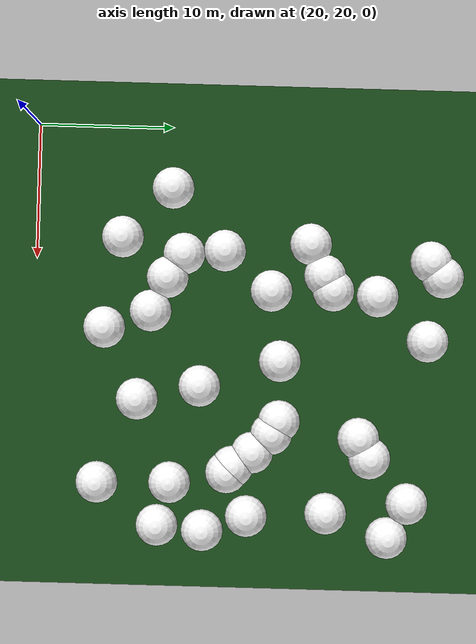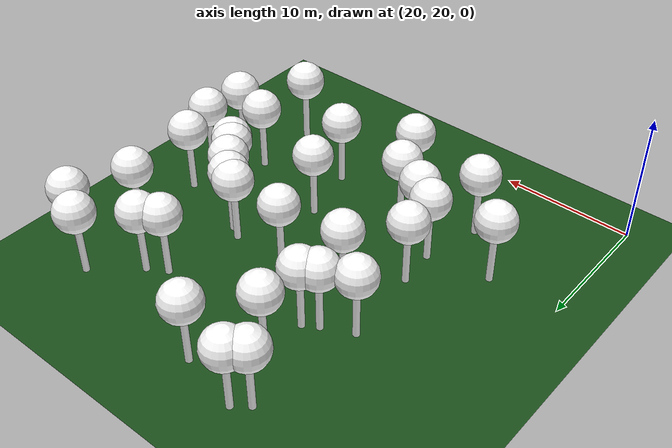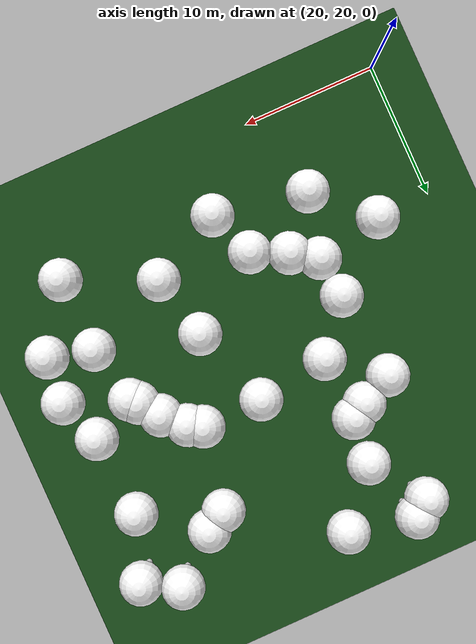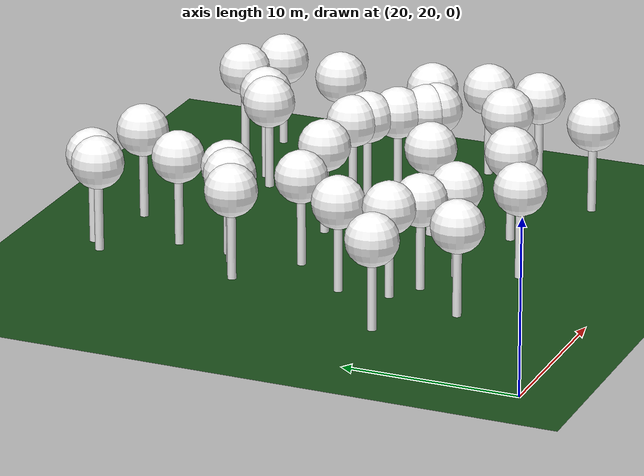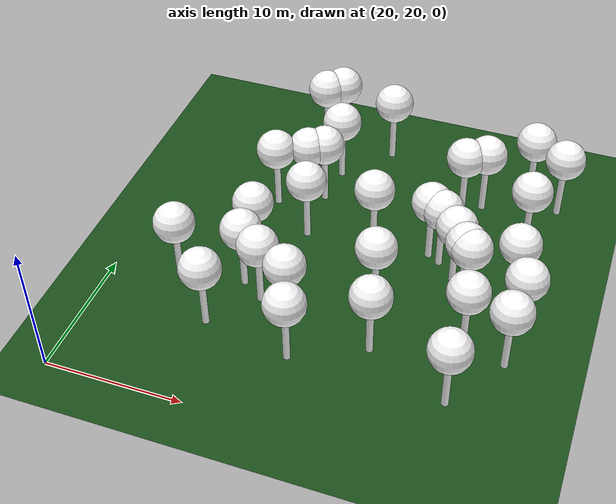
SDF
<sdf version="1.8">
 <world name="forest_world">
  <model name="tree_simple475">
   <static>1</static>
   <link name="link">
    <pose>0 0 0.1 0 -0 0</pose>
    <collision name="collision_trunk">
     <pose>0 0 2 0 -0 0</pose>
     <geometry><cylinder><radius>0.25</radius><length>4</length></cylinder></geometry>
    </collision>
    <collision name="collision_treetop">
     <pose>0 0 5.2 0 -0 0</pose>
     <geometry><sphere><radius>1.5</radius></sphere></geometry>
    </collision>
    <visual name="trunk">
     <pose>0 0 2 0 -0 0</pose>
     <geometry><cylinder><radius>0.25</radius><length>4</length></cylinder></geometry>
     <material>
      <ambient>0.5 0.5 0.5 1</ambient>
      <diffuse>1.0 1.0 1.0 1</diffuse>
      <specular>0.0 0.0 0.0 1</specular>
      <pbr>
       <metal>
        <albedo_map>../worlds/textures/tree_simple_trunk.jpg</albedo_map>
        <metalness>0.0</metalness>
        <roughness>0.8</roughness>
       </metal>
      </pbr>
     </material>
    </visual>
    <visual name="treetop">
     <pose>0 0 5.2 0 -0 0</pose>
     <geometry><sphere><radius>1.5</radius></sphere></geometry>
     <material>
      <ambient>0.5 0.5 0.5 1</ambient>
      <diffuse>1.0 1.0 1.0 1</diffuse>
      <specular>0.0 0.0 0.0 1</specular>
      <pbr>
       <metal>
        <albedo_map>../worlds/textures/tree_simple_treetop.jpg</albedo_map>
        <metalness>0.0</metalness>
        <roughness>0.9</roughness>
       </metal>
      </pbr>
     </material>
    </visual>
   </link>
   <pose>30.9431222124 49.7431013716 0 0 -0 0</pose>
  </model>
  <model name="tree_simple449">
   <static>1</static>
   <link name="link">
    <pose>0 0 0.1 0 -0 0</pose>
    <collision name="collision_trunk">
     <pose>0 0 2 0 -0 0</pose>
     <geometry><cylinder><radius>0.25</radius><length>4</length></cylinder></geometry>
    </collision>
    <collision name="collision_treetop">
     <pose>0 0 5.2 0 -0 0</pose>
     <geometry><sphere><radius>1.5</radius></sphere></geometry>
    </collision>
    <visual name="trunk">
     <pose>0 0 2 0 -0 0</pose>
     <geometry><cylinder><radius>0.25</radius><length>4</length></cylinder></geometry>
     <material>
      <ambient>0.5 0.5 0.5 1</ambient>
      <diffuse>1.0 1.0 1.0 1</diffuse>
      <specular>0.0 0.0 0.0 1</specular>
      <pbr>
       <metal>
        <albedo_map>../worlds/textures/tree_simple_trunk.jpg</albedo_map>
        <metalness>0.0</metalness>
        <roughness>0.8</roughness>
       </metal>
      </pbr>
     </material>
    </visual>
    <visual name="treetop">
     <pose>0 0 5.2 0 -0 0</pose>
     <geometry><sphere><radius>1.5</radius></sphere></geometry>
     <material>
      <ambient>0.5 0.5 0.5 1</ambient>
      <diffuse>1.0 1.0 1.0 1</diffuse>
      <specular>0.0 0.0 0.0 1</specular>
      <pbr>
       <metal>
        <albedo_map>../worlds/textures/tree_simple_treetop.jpg</albedo_map>
        <metalness>0.0</metalness>
        <roughness>0.9</roughness>
       </metal>
      </pbr>
     </material>
    </visual>
   </link>
   <pose>32.2301413543 37.584175072 0 0 -0 0</pose>
  </model>
  <model name="tree_simple426">
   <static>1</static>
   <link name="link">
    <pose>0 0 0.1 0 -0 0</pose>
    <collision name="collision_trunk">
     <pose>0 0 2 0 -0 0</pose>
     <geometry><cylinder><radius>0.25</radius><length>4</length></cylinder></geometry>
    </collision>
    <collision name="collision_treetop">
     <pose>0 0 5.2 0 -0 0</pose>
     <geometry><sphere><radius>1.5</radius></sphere></geometry>
    </collision>
    <visual name="trunk">
     <pose>0 0 2 0 -0 0</pose>
     <geometry><cylinder><radius>0.25</radius><length>4</length></cylinder></geometry>
     <material>
      <ambient>0.5 0.5 0.5 1</ambient>
      <diffuse>1.0 1.0 1.0 1</diffuse>
      <specular>0.0 0.0 0.0 1</specular>
      <pbr>
       <metal>
        <albedo_map>../worlds/textures/tree_simple_trunk.jpg</albedo_map>
        <metalness>0.0</metalness>
        <roughness>0.8</roughness>
       </metal>
      </pbr>
     </material>
    </visual>
    <visual name="treetop">
     <pose>0 0 5.2 0 -0 0</pose>
     <geometry><sphere><radius>1.5</radius></sphere></geometry>
     <material>
      <ambient>0.5 0.5 0.5 1</ambient>
      <diffuse>1.0 1.0 1.0 1</diffuse>
      <specular>0.0 0.0 0.0 1</specular>
      <pbr>
       <metal>
        <albedo_map>../worlds/textures/tree_simple_treetop.jpg</albedo_map>
        <metalness>0.0</metalness>
        <roughness>0.9</roughness>
       </metal>
      </pbr>
     </material>
    </visual>
   </link>
   <pose>48.2961501598 36.1951986296 0 0 -0 0</pose>
  </model>
  <model name="tree_simple414">
   <static>1</static>
   <link name="link">
    <pose>0 0 0.1 0 -0 0</pose>
    <collision name="collision_trunk">
     <pose>0 0 2 0 -0 0</pose>
     <geometry><cylinder><radius>0.25</radius><length>4</length></cylinder></geometry>
    </collision>
    <collision name="collision_treetop">
     <pose>0 0 5.2 0 -0 0</pose>
     <geometry><sphere><radius>1.5</radius></sphere></geometry>
    </collision>
    <visual name="trunk">
     <pose>0 0 2 0 -0 0</pose>
     <geometry><cylinder><radius>0.25</radius><length>4</length></cylinder></geometry>
     <material>
      <ambient>0.5 0.5 0.5 1</ambient>
      <diffuse>1.0 1.0 1.0 1</diffuse>
      <specular>0.0 0.0 0.0 1</specular>
      <pbr>
       <metal>
        <albedo_map>../worlds/textures/tree_simple_trunk.jpg</albedo_map>
        <metalness>0.0</metalness>
        <roughness>0.8</roughness>
       </metal>
      </pbr>
     </material>
    </visual>
    <visual name="treetop">
     <pose>0 0 5.2 0 -0 0</pose>
     <geometry><sphere><radius>1.5</radius></sphere></geometry>
     <material>
      <ambient>0.5 0.5 0.5 1</ambient>
      <diffuse>1.0 1.0 1.0 1</diffuse>
      <specular>0.0 0.0 0.0 1</specular>
      <pbr>
       <metal>
        <albedo_map>../worlds/textures/tree_simple_treetop.jpg</albedo_map>
        <metalness>0.0</metalness>
        <roughness>0.9</roughness>
       </metal>
      </pbr>
     </material>
    </visual>
   </link>
   <pose>44.7953546514 35.1223055557 0 0 -0 0</pose>
  </model>
  <model name="tree_simple402">
   <static>1</static>
   <link name="link">
    <pose>0 0 0.1 0 -0 0</pose>
    <collision name="collision_trunk">
     <pose>0 0 2 0 -0 0</pose>
     <geometry><cylinder><radius>0.25</radius><length>4</length></cylinder></geometry>
    </collision>
    <collision name="collision_treetop">
     <pose>0 0 5.2 0 -0 0</pose>
     <geometry><sphere><radius>1.5</radius></sphere></geometry>
    </collision>
    <visual name="trunk">
     <pose>0 0 2 0 -0 0</pose>
     <geometry><cylinder><radius>0.25</radius><length>4</length></cylinder></geometry>
     <material>
      <ambient>0.5 0.5 0.5 1</ambient>
      <diffuse>1.0 1.0 1.0 1</diffuse>
      <specular>0.0 0.0 0.0 1</specular>
      <pbr>
       <metal>
        <albedo_map>../worlds/textures/tree_simple_trunk.jpg</albedo_map>
        <metalness>0.0</metalness>
        <roughness>0.8</roughness>
       </metal>
      </pbr>
     </material>
    </visual>
    <visual name="treetop">
     <pose>0 0 5.2 0 -0 0</pose>
     <geometry><sphere><radius>1.5</radius></sphere></geometry>
     <material>
      <ambient>0.5 0.5 0.5 1</ambient>
      <diffuse>1.0 1.0 1.0 1</diffuse>
      <specular>0.0 0.0 0.0 1</specular>
      <pbr>
       <metal>
        <albedo_map>../worlds/textures/tree_simple_treetop.jpg</albedo_map>
        <metalness>0.0</metalness>
        <roughness>0.9</roughness>
       </metal>
      </pbr>
     </material>
    </visual>
   </link>
   <pose>46.1530364681 25.5114731744 0 0 -0 0</pose>
  </model>
  <model name="tree_simple388">
   <static>1</static>
   <link name="link">
    <pose>0 0 0.1 0 -0 0</pose>
    <collision name="collision_trunk">
     <pose>0 0 2 0 -0 0</pose>
     <geometry><cylinder><radius>0.25</radius><length>4</length></cylinder></geometry>
    </collision>
    <collision name="collision_treetop">
     <pose>0 0 5.2 0 -0 0</pose>
     <geometry><sphere><radius>1.5</radius></sphere></geometry>
    </collision>
    <visual name="trunk">
     <pose>0 0 2 0 -0 0</pose>
     <geometry><cylinder><radius>0.25</radius><length>4</length></cylinder></geometry>
     <material>
      <ambient>0.5 0.5 0.5 1</ambient>
      <diffuse>1.0 1.0 1.0 1</diffuse>
      <specular>0.0 0.0 0.0 1</specular>
      <pbr>
       <metal>
        <albedo_map>../worlds/textures/tree_simple_trunk.jpg</albedo_map>
        <metalness>0.0</metalness>
        <roughness>0.8</roughness>
       </metal>
      </pbr>
     </material>
    </visual>
    <visual name="treetop">
     <pose>0 0 5.2 0 -0 0</pose>
     <geometry><sphere><radius>1.5</radius></sphere></geometry>
     <material>
      <ambient>0.5 0.5 0.5 1</ambient>
      <diffuse>1.0 1.0 1.0 1</diffuse>
      <specular>0.0 0.0 0.0 1</specular>
      <pbr>
       <metal>
        <albedo_map>../worlds/textures/tree_simple_treetop.jpg</albedo_map>
        <metalness>0.0</metalness>
        <roughness>0.9</roughness>
       </metal>
      </pbr>
     </material>
    </visual>
   </link>
   <pose>42.4041487093 37.8396173547 0 0 -0 0</pose>
  </model>
  <model name="tree_simple384">
   <static>1</static>
   <link name="link">
    <pose>0 0 0.1 0 -0 0</pose>
    <collision name="collision_trunk">
     <pose>0 0 2 0 -0 0</pose>
     <geometry><cylinder><radius>0.25</radius><length>4</length></cylinder></geometry>
    </collision>
    <collision name="collision_treetop">
     <pose>0 0 5.2 0 -0 0</pose>
     <geometry><sphere><radius>1.5</radius></sphere></geometry>
    </collision>
    <visual name="trunk">
     <pose>0 0 2 0 -0 0</pose>
     <geometry><cylinder><radius>0.25</radius><length>4</length></cylinder></geometry>
     <material>
      <ambient>0.5 0.5 0.5 1</ambient>
      <diffuse>1.0 1.0 1.0 1</diffuse>
      <specular>0.0 0.0 0.0 1</specular>
      <pbr>
       <metal>
        <albedo_map>../worlds/textures/tree_simple_trunk.jpg</albedo_map>
        <metalness>0.0</metalness>
        <roughness>0.8</roughness>
       </metal>
      </pbr>
     </material>
    </visual>
    <visual name="treetop">
     <pose>0 0 5.2 0 -0 0</pose>
     <geometry><sphere><radius>1.5</radius></sphere></geometry>
     <material>
      <ambient>0.5 0.5 0.5 1</ambient>
      <diffuse>1.0 1.0 1.0 1</diffuse>
      <specular>0.0 0.0 0.0 1</specular>
      <pbr>
       <metal>
        <albedo_map>../worlds/textures/tree_simple_treetop.jpg</albedo_map>
        <metalness>0.0</metalness>
        <roughness>0.9</roughness>
       </metal>
      </pbr>
     </material>
    </visual>
   </link>
   <pose>47.965270182 41.8315973536 0 0 -0 0</pose>
  </model>
  <model name="tree_simple366">
   <static>1</static>
   <link name="link">
    <pose>0 0 0.1 0 -0 0</pose>
    <collision name="collision_trunk">
     <pose>0 0 2 0 -0 0</pose>
     <geometry><cylinder><radius>0.25</radius><length>4</length></cylinder></geometry>
    </collision>
    <collision name="collision_treetop">
     <pose>0 0 5.2 0 -0 0</pose>
     <geometry><sphere><radius>1.5</radius></sphere></geometry>
    </collision>
    <visual name="trunk">
     <pose>0 0 2 0 -0 0</pose>
     <geometry><cylinder><radius>0.25</radius><length>4</length></cylinder></geometry>
     <material>
      <ambient>0.5 0.5 0.5 1</ambient>
      <diffuse>1.0 1.0 1.0 1</diffuse>
      <specular>0.0 0.0 0.0 1</specular>
      <pbr>
       <metal>
        <albedo_map>../worlds/textures/tree_simple_trunk.jpg</albedo_map>
        <metalness>0.0</metalness>
        <roughness>0.8</roughness>
       </metal>
      </pbr>
     </material>
    </visual>
    <visual name="treetop">
     <pose>0 0 5.2 0 -0 0</pose>
     <geometry><sphere><radius>1.5</radius></sphere></geometry>
     <material>
      <ambient>0.5 0.5 0.5 1</ambient>
      <diffuse>1.0 1.0 1.0 1</diffuse>
      <specular>0.0 0.0 0.0 1</specular>
      <pbr>
       <metal>
        <albedo_map>../worlds/textures/tree_simple_treetop.jpg</albedo_map>
        <metalness>0.0</metalness>
        <roughness>0.9</roughness>
       </metal>
      </pbr>
     </material>
    </visual>
   </link>
   <pose>37.2116014065 38.3075288524 0 0 -0 0</pose>
  </model>
  <model name="tree_simple345">
   <static>1</static>
   <link name="link">
    <pose>0 0 0.1 0 -0 0</pose>
    <collision name="collision_trunk">
     <pose>0 0 2 0 -0 0</pose>
     <geometry><cylinder><radius>0.25</radius><length>4</length></cylinder></geometry>
    </collision>
    <collision name="collision_treetop">
     <pose>0 0 5.2 0 -0 0</pose>
     <geometry><sphere><radius>1.5</radius></sphere></geometry>
    </collision>
    <visual name="trunk">
     <pose>0 0 2 0 -0 0</pose>
     <geometry><cylinder><radius>0.25</radius><length>4</length></cylinder></geometry>
     <material>
      <ambient>0.5 0.5 0.5 1</ambient>
      <diffuse>1.0 1.0 1.0 1</diffuse>
      <specular>0.0 0.0 0.0 1</specular>
      <pbr>
       <metal>
        <albedo_map>../worlds/textures/tree_simple_trunk.jpg</albedo_map>
        <metalness>0.0</metalness>
        <roughness>0.8</roughness>
       </metal>
      </pbr>
     </material>
    </visual>
    <visual name="treetop">
     <pose>0 0 5.2 0 -0 0</pose>
     <geometry><sphere><radius>1.5</radius></sphere></geometry>
     <material>
      <ambient>0.5 0.5 0.5 1</ambient>
      <diffuse>1.0 1.0 1.0 1</diffuse>
      <specular>0.0 0.0 0.0 1</specular>
      <pbr>
       <metal>
        <albedo_map>../worlds/textures/tree_simple_treetop.jpg</albedo_map>
        <metalness>0.0</metalness>
        <roughness>0.9</roughness>
       </metal>
      </pbr>
     </material>
    </visual>
   </link>
   <pose>28.6628994432 26.9095330542 0 0 -0 0</pose>
  </model>
  <model name="tree_simple337">
   <static>1</static>
   <link name="link">
    <pose>0 0 0.1 0 -0 0</pose>
    <collision name="collision_trunk">
     <pose>0 0 2 0 -0 0</pose>
     <geometry><cylinder><radius>0.25</radius><length>4</length></cylinder></geometry>
    </collision>
    <collision name="collision_treetop">
     <pose>0 0 5.2 0 -0 0</pose>
     <geometry><sphere><radius>1.5</radius></sphere></geometry>
    </collision>
    <visual name="trunk">
     <pose>0 0 2 0 -0 0</pose>
     <geometry><cylinder><radius>0.25</radius><length>4</length></cylinder></geometry>
     <material>
      <ambient>0.5 0.5 0.5 1</ambient>
      <diffuse>1.0 1.0 1.0 1</diffuse>
      <specular>0.0 0.0 0.0 1</specular>
      <pbr>
       <metal>
        <albedo_map>../worlds/textures/tree_simple_trunk.jpg</albedo_map>
        <metalness>0.0</metalness>
        <roughness>0.8</roughness>
       </metal>
      </pbr>
     </material>
    </visual>
    <visual name="treetop">
     <pose>0 0 5.2 0 -0 0</pose>
     <geometry><sphere><radius>1.5</radius></sphere></geometry>
     <material>
      <ambient>0.5 0.5 0.5 1</ambient>
      <diffuse>1.0 1.0 1.0 1</diffuse>
      <specular>0.0 0.0 0.0 1</specular>
      <pbr>
       <metal>
        <albedo_map>../worlds/textures/tree_simple_treetop.jpg</albedo_map>
        <metalness>0.0</metalness>
        <roughness>0.9</roughness>
       </metal>
      </pbr>
     </material>
    </visual>
   </link>
   <pose>43.9549385006 44.8684303608 0 0 -0 0</pose>
  </model>
  <model name="tree_simple332">
   <static>1</static>
   <link name="link">
    <pose>0 0 0.1 0 -0 0</pose>
    <collision name="collision_trunk">
     <pose>0 0 2 0 -0 0</pose>
     <geometry><cylinder><radius>0.25</radius><length>4</length></cylinder></geometry>
    </collision>
    <collision name="collision_treetop">
     <pose>0 0 5.2 0 -0 0</pose>
     <geometry><sphere><radius>1.5</radius></sphere></geometry>
    </collision>
    <visual name="trunk">
     <pose>0 0 2 0 -0 0</pose>
     <geometry><cylinder><radius>0.25</radius><length>4</length></cylinder></geometry>
     <material>
      <ambient>0.5 0.5 0.5 1</ambient>
      <diffuse>1.0 1.0 1.0 1</diffuse>
      <specular>0.0 0.0 0.0 1</specular>
      <pbr>
       <metal>
        <albedo_map>../worlds/textures/tree_simple_trunk.jpg</albedo_map>
        <metalness>0.0</metalness>
        <roughness>0.8</roughness>
       </metal>
      </pbr>
     </material>
    </visual>
    <visual name="treetop">
     <pose>0 0 5.2 0 -0 0</pose>
     <geometry><sphere><radius>1.5</radius></sphere></geometry>
     <material>
      <ambient>0.5 0.5 0.5 1</ambient>
      <diffuse>1.0 1.0 1.0 1</diffuse>
      <specular>0.0 0.0 0.0 1</specular>
      <pbr>
       <metal>
        <albedo_map>../worlds/textures/tree_simple_treetop.jpg</albedo_map>
        <metalness>0.0</metalness>
        <roughness>0.9</roughness>
       </metal>
      </pbr>
     </material>
    </visual>
   </link>
   <pose>39.1289157524 32.636662066 0 0 -0 0</pose>
  </model>
  <model name="tree_simple313">
   <static>1</static>
   <link name="link">
    <pose>0 0 0.1 0 -0 0</pose>
    <collision name="collision_trunk">
     <pose>0 0 2 0 -0 0</pose>
     <geometry><cylinder><radius>0.25</radius><length>4</length></cylinder></geometry>
    </collision>
    <collision name="collision_treetop">
     <pose>0 0 5.2 0 -0 0</pose>
     <geometry><sphere><radius>1.5</radius></sphere></geometry>
    </collision>
    <visual name="trunk">
     <pose>0 0 2 0 -0 0</pose>
     <geometry><cylinder><radius>0.25</radius><length>4</length></cylinder></geometry>
     <material>
      <ambient>0.5 0.5 0.5 1</ambient>
      <diffuse>1.0 1.0 1.0 1</diffuse>
      <specular>0.0 0.0 0.0 1</specular>
      <pbr>
       <metal>
        <albedo_map>../worlds/textures/tree_simple_trunk.jpg</albedo_map>
        <metalness>0.0</metalness>
        <roughness>0.8</roughness>
       </metal>
      </pbr>
     </material>
    </visual>
    <visual name="treetop">
     <pose>0 0 5.2 0 -0 0</pose>
     <geometry><sphere><radius>1.5</radius></sphere></geometry>
     <material>
      <ambient>0.5 0.5 0.5 1</ambient>
      <diffuse>1.0 1.0 1.0 1</diffuse>
      <specular>0.0 0.0 0.0 1</specular>
      <pbr>
       <metal>
        <albedo_map>../worlds/textures/tree_simple_treetop.jpg</albedo_map>
        <metalness>0.0</metalness>
        <roughness>0.9</roughness>
       </metal>
      </pbr>
     </material>
    </visual>
   </link>
   <pose>25.1046881591 30.4098930382 0 0 -0 0</pose>
  </model>
  <model name="tree_simple306">
   <static>1</static>
   <link name="link">
    <pose>0 0 0.1 0 -0 0</pose>
    <collision name="collision_trunk">
     <pose>0 0 2 0 -0 0</pose>
     <geometry><cylinder><radius>0.25</radius><length>4</length></cylinder></geometry>
    </collision>
    <collision name="collision_treetop">
     <pose>0 0 5.2 0 -0 0</pose>
     <geometry><sphere><radius>1.5</radius></sphere></geometry>
    </collision>
    <visual name="trunk">
     <pose>0 0 2 0 -0 0</pose>
     <geometry><cylinder><radius>0.25</radius><length>4</length></cylinder></geometry>
     <material>
      <ambient>0.5 0.5 0.5 1</ambient>
      <diffuse>1.0 1.0 1.0 1</diffuse>
      <specular>0.0 0.0 0.0 1</specular>
      <pbr>
       <metal>
        <albedo_map>../worlds/textures/tree_simple_trunk.jpg</albedo_map>
        <metalness>0.0</metalness>
        <roughness>0.8</roughness>
       </metal>
      </pbr>
     </material>
    </visual>
    <visual name="treetop">
     <pose>0 0 5.2 0 -0 0</pose>
     <geometry><sphere><radius>1.5</radius></sphere></geometry>
     <material>
      <ambient>0.5 0.5 0.5 1</ambient>
      <diffuse>1.0 1.0 1.0 1</diffuse>
      <specular>0.0 0.0 0.0 1</specular>
      <pbr>
       <metal>
        <albedo_map>../worlds/textures/tree_simple_treetop.jpg</albedo_map>
        <metalness>0.0</metalness>
        <roughness>0.9</roughness>
       </metal>
      </pbr>
     </material>
    </visual>
   </link>
   <pose>41.4749799485 38.3641433375 0 0 -0 0</pose>
  </model>
  <model name="tree_simple294">
   <static>1</static>
   <link name="link">
    <pose>0 0 0.1 0 -0 0</pose>
    <collision name="collision_trunk">
     <pose>0 0 2 0 -0 0</pose>
     <geometry><cylinder><radius>0.25</radius><length>4</length></cylinder></geometry>
    </collision>
    <collision name="collision_treetop">
     <pose>0 0 5.2 0 -0 0</pose>
     <geometry><sphere><radius>1.5</radius></sphere></geometry>
    </collision>
    <visual name="trunk">
     <pose>0 0 2 0 -0 0</pose>
     <geometry><cylinder><radius>0.25</radius><length>4</length></cylinder></geometry>
     <material>
      <ambient>0.5 0.5 0.5 1</ambient>
      <diffuse>1.0 1.0 1.0 1</diffuse>
      <specular>0.0 0.0 0.0 1</specular>
      <pbr>
       <metal>
        <albedo_map>../worlds/textures/tree_simple_trunk.jpg</albedo_map>
        <metalness>0.0</metalness>
        <roughness>0.8</roughness>
       </metal>
      </pbr>
     </material>
    </visual>
    <visual name="treetop">
     <pose>0 0 5.2 0 -0 0</pose>
     <geometry><sphere><radius>1.5</radius></sphere></geometry>
     <material>
      <ambient>0.5 0.5 0.5 1</ambient>
      <diffuse>1.0 1.0 1.0 1</diffuse>
      <specular>0.0 0.0 0.0 1</specular>
      <pbr>
       <metal>
        <albedo_map>../worlds/textures/tree_simple_treetop.jpg</albedo_map>
        <metalness>0.0</metalness>
        <roughness>0.9</roughness>
       </metal>
      </pbr>
     </material>
    </visual>
   </link>
   <pose>29.4568486027 34.1994676111 0 0 -0 0</pose>
  </model>
  <model name="tree_simple265">
   <static>1</static>
   <link name="link">
    <pose>0 0 0.1 0 -0 0</pose>
    <collision name="collision_trunk">
     <pose>0 0 2 0 -0 0</pose>
     <geometry><cylinder><radius>0.25</radius><length>4</length></cylinder></geometry>
    </collision>
    <collision name="collision_treetop">
     <pose>0 0 5.2 0 -0 0</pose>
     <geometry><sphere><radius>1.5</radius></sphere></geometry>
    </collision>
    <visual name="trunk">
     <pose>0 0 2 0 -0 0</pose>
     <geometry><cylinder><radius>0.25</radius><length>4</length></cylinder></geometry>
     <material>
      <ambient>0.5 0.5 0.5 1</ambient>
      <diffuse>1.0 1.0 1.0 1</diffuse>
      <specular>0.0 0.0 0.0 1</specular>
      <pbr>
       <metal>
        <albedo_map>../worlds/textures/tree_simple_trunk.jpg</albedo_map>
        <metalness>0.0</metalness>
        <roughness>0.8</roughness>
       </metal>
      </pbr>
     </material>
    </visual>
    <visual name="treetop">
     <pose>0 0 5.2 0 -0 0</pose>
     <geometry><sphere><radius>1.5</radius></sphere></geometry>
     <material>
      <ambient>0.5 0.5 0.5 1</ambient>
      <diffuse>1.0 1.0 1.0 1</diffuse>
      <specular>0.0 0.0 0.0 1</specular>
      <pbr>
       <metal>
        <albedo_map>../worlds/textures/tree_simple_treetop.jpg</albedo_map>
        <metalness>0.0</metalness>
        <roughness>0.9</roughness>
       </metal>
      </pbr>
     </material>
    </visual>
   </link>
   <pose>49.0905511153 29.866561196 0 0 -0 0</pose>
  </model>
  <model name="tree_simple230">
   <static>1</static>
   <link name="link">
    <pose>0 0 0.1 0 -0 0</pose>
    <collision name="collision_trunk">
     <pose>0 0 2 0 -0 0</pose>
     <geometry><cylinder><radius>0.25</radius><length>4</length></cylinder></geometry>
    </collision>
    <collision name="collision_treetop">
     <pose>0 0 5.2 0 -0 0</pose>
     <geometry><sphere><radius>1.5</radius></sphere></geometry>
    </collision>
    <visual name="trunk">
     <pose>0 0 2 0 -0 0</pose>
     <geometry><cylinder><radius>0.25</radius><length>4</length></cylinder></geometry>
     <material>
      <ambient>0.5 0.5 0.5 1</ambient>
      <diffuse>1.0 1.0 1.0 1</diffuse>
      <specular>0.0 0.0 0.0 1</specular>
      <pbr>
       <metal>
        <albedo_map>../worlds/textures/tree_simple_trunk.jpg</albedo_map>
        <metalness>0.0</metalness>
        <roughness>0.8</roughness>
       </metal>
      </pbr>
     </material>
    </visual>
    <visual name="treetop">
     <pose>0 0 5.2 0 -0 0</pose>
     <geometry><sphere><radius>1.5</radius></sphere></geometry>
     <material>
      <ambient>0.5 0.5 0.5 1</ambient>
      <diffuse>1.0 1.0 1.0 1</diffuse>
      <specular>0.0 0.0 0.0 1</specular>
      <pbr>
       <metal>
        <albedo_map>../worlds/textures/tree_simple_treetop.jpg</albedo_map>
        <metalness>0.0</metalness>
        <roughness>0.9</roughness>
       </metal>
      </pbr>
     </material>
    </visual>
   </link>
   <pose>49.3839982887 33.0886722223 0 0 -0 0</pose>
  </model>
  <model name="tree_simple197">
   <static>1</static>
   <link name="link">
    <pose>0 0 0.1 0 -0 0</pose>
    <collision name="collision_trunk">
     <pose>0 0 2 0 -0 0</pose>
     <geometry><cylinder><radius>0.25</radius><length>4</length></cylinder></geometry>
    </collision>
    <collision name="collision_treetop">
     <pose>0 0 5.2 0 -0 0</pose>
     <geometry><sphere><radius>1.5</radius></sphere></geometry>
    </collision>
    <visual name="trunk">
     <pose>0 0 2 0 -0 0</pose>
     <geometry><cylinder><radius>0.25</radius><length>4</length></cylinder></geometry>
     <material>
      <ambient>0.5 0.5 0.5 1</ambient>
      <diffuse>1.0 1.0 1.0 1</diffuse>
      <specular>0.0 0.0 0.0 1</specular>
      <pbr>
       <metal>
        <albedo_map>../worlds/textures/tree_simple_trunk.jpg</albedo_map>
        <metalness>0.0</metalness>
        <roughness>0.8</roughness>
       </metal>
      </pbr>
     </material>
    </visual>
    <visual name="treetop">
     <pose>0 0 5.2 0 -0 0</pose>
     <geometry><sphere><radius>1.5</radius></sphere></geometry>
     <material>
      <ambient>0.5 0.5 0.5 1</ambient>
      <diffuse>1.0 1.0 1.0 1</diffuse>
      <specular>0.0 0.0 0.0 1</specular>
      <pbr>
       <metal>
        <albedo_map>../worlds/textures/tree_simple_treetop.jpg</albedo_map>
        <metalness>0.0</metalness>
        <roughness>0.9</roughness>
       </metal>
      </pbr>
     </material>
    </visual>
   </link>
   <pose>45.2259514073 34.7129577048 0 0 -0 0</pose>
  </model>
  <model name="tree_simple190">
   <static>1</static>
   <link name="link">
    <pose>0 0 0.1 0 -0 0</pose>
    <collision name="collision_trunk">
     <pose>0 0 2 0 -0 0</pose>
     <geometry><cylinder><radius>0.25</radius><length>4</length></cylinder></geometry>
    </collision>
    <collision name="collision_treetop">
     <pose>0 0 5.2 0 -0 0</pose>
     <geometry><sphere><radius>1.5</radius></sphere></geometry>
    </collision>
    <visual name="trunk">
     <pose>0 0 2 0 -0 0</pose>
     <geometry><cylinder><radius>0.25</radius><length>4</length></cylinder></geometry>
     <material>
      <ambient>0.5 0.5 0.5 1</ambient>
      <diffuse>1.0 1.0 1.0 1</diffuse>
      <specular>0.0 0.0 0.0 1</specular>
      <pbr>
       <metal>
        <albedo_map>../worlds/textures/tree_simple_trunk.jpg</albedo_map>
        <metalness>0.0</metalness>
        <roughness>0.8</roughness>
       </metal>
      </pbr>
     </material>
    </visual>
    <visual name="treetop">
     <pose>0 0 5.2 0 -0 0</pose>
     <geometry><sphere><radius>1.5</radius></sphere></geometry>
     <material>
      <ambient>0.5 0.5 0.5 1</ambient>
      <diffuse>1.0 1.0 1.0 1</diffuse>
      <specular>0.0 0.0 0.0 1</specular>
      <pbr>
       <metal>
        <albedo_map>../worlds/textures/tree_simple_treetop.jpg</albedo_map>
        <metalness>0.0</metalness>
        <roughness>0.9</roughness>
       </metal>
      </pbr>
     </material>
    </visual>
   </link>
   <pose>33.8682165362 29.0192768916 0 0 -0 0</pose>
  </model>
  <model name="tree_simple180">
   <static>1</static>
   <link name="link">
    <pose>0 0 0.1 0 -0 0</pose>
    <collision name="collision_trunk">
     <pose>0 0 2 0 -0 0</pose>
     <geometry><cylinder><radius>0.25</radius><length>4</length></cylinder></geometry>
    </collision>
    <collision name="collision_treetop">
     <pose>0 0 5.2 0 -0 0</pose>
     <geometry><sphere><radius>1.5</radius></sphere></geometry>
    </collision>
    <visual name="trunk">
     <pose>0 0 2 0 -0 0</pose>
     <geometry><cylinder><radius>0.25</radius><length>4</length></cylinder></geometry>
     <material>
      <ambient>0.5 0.5 0.5 1</ambient>
      <diffuse>1.0 1.0 1.0 1</diffuse>
      <specular>0.0 0.0 0.0 1</specular>
      <pbr>
       <metal>
        <albedo_map>../worlds/textures/tree_simple_trunk.jpg</albedo_map>
        <metalness>0.0</metalness>
        <roughness>0.8</roughness>
       </metal>
      </pbr>
     </material>
    </visual>
    <visual name="treetop">
     <pose>0 0 5.2 0 -0 0</pose>
     <geometry><sphere><radius>1.5</radius></sphere></geometry>
     <material>
      <ambient>0.5 0.5 0.5 1</ambient>
      <diffuse>1.0 1.0 1.0 1</diffuse>
      <specular>0.0 0.0 0.0 1</specular>
      <pbr>
       <metal>
        <albedo_map>../worlds/textures/tree_simple_treetop.jpg</albedo_map>
        <metalness>0.0</metalness>
        <roughness>0.9</roughness>
       </metal>
      </pbr>
     </material>
    </visual>
   </link>
   <pose>31.0354412198 41.3621247095 0 0 -0 0</pose>
  </model>
  <model name="tree_simple164">
   <static>1</static>
   <link name="link">
    <pose>0 0 0.1 0 -0 0</pose>
    <collision name="collision_trunk">
     <pose>0 0 2 0 -0 0</pose>
     <geometry><cylinder><radius>0.25</radius><length>4</length></cylinder></geometry>
    </collision>
    <collision name="collision_treetop">
     <pose>0 0 5.2 0 -0 0</pose>
     <geometry><sphere><radius>1.5</radius></sphere></geometry>
    </collision>
    <visual name="trunk">
     <pose>0 0 2 0 -0 0</pose>
     <geometry><cylinder><radius>0.25</radius><length>4</length></cylinder></geometry>
     <material>
      <ambient>0.5 0.5 0.5 1</ambient>
      <diffuse>1.0 1.0 1.0 1</diffuse>
      <specular>0.0 0.0 0.0 1</specular>
      <pbr>
       <metal>
        <albedo_map>../worlds/textures/tree_simple_trunk.jpg</albedo_map>
        <metalness>0.0</metalness>
        <roughness>0.8</roughness>
       </metal>
      </pbr>
     </material>
    </visual>
    <visual name="treetop">
     <pose>0 0 5.2 0 -0 0</pose>
     <geometry><sphere><radius>1.5</radius></sphere></geometry>
     <material>
      <ambient>0.5 0.5 0.5 1</ambient>
      <diffuse>1.0 1.0 1.0 1</diffuse>
      <specular>0.0 0.0 0.0 1</specular>
      <pbr>
       <metal>
        <albedo_map>../worlds/textures/tree_simple_treetop.jpg</albedo_map>
        <metalness>0.0</metalness>
        <roughness>0.9</roughness>
       </metal>
      </pbr>
     </material>
    </visual>
   </link>
   <pose>32.4161735763 45.136147052 0 0 -0 0</pose>
  </model>
  <model name="tree_simple159">
   <static>1</static>
   <link name="link">
    <pose>0 0 0.1 0 -0 0</pose>
    <collision name="collision_trunk">
     <pose>0 0 2 0 -0 0</pose>
     <geometry><cylinder><radius>0.25</radius><length>4</length></cylinder></geometry>
    </collision>
    <collision name="collision_treetop">
     <pose>0 0 5.2 0 -0 0</pose>
     <geometry><sphere><radius>1.5</radius></sphere></geometry>
    </collision>
    <visual name="trunk">
     <pose>0 0 2 0 -0 0</pose>
     <geometry><cylinder><radius>0.25</radius><length>4</length></cylinder></geometry>
     <material>
      <ambient>0.5 0.5 0.5 1</ambient>
      <diffuse>1.0 1.0 1.0 1</diffuse>
      <specular>0.0 0.0 0.0 1</specular>
      <pbr>
       <metal>
        <albedo_map>../worlds/textures/tree_simple_trunk.jpg</albedo_map>
        <metalness>0.0</metalness>
        <roughness>0.8</roughness>
       </metal>
      </pbr>
     </material>
    </visual>
    <visual name="treetop">
     <pose>0 0 5.2 0 -0 0</pose>
     <geometry><sphere><radius>1.5</radius></sphere></geometry>
     <material>
      <ambient>0.5 0.5 0.5 1</ambient>
      <diffuse>1.0 1.0 1.0 1</diffuse>
      <specular>0.0 0.0 0.0 1</specular>
      <pbr>
       <metal>
        <albedo_map>../worlds/textures/tree_simple_treetop.jpg</albedo_map>
        <metalness>0.0</metalness>
        <roughness>0.9</roughness>
       </metal>
      </pbr>
     </material>
    </visual>
   </link>
   <pose>28.8379877366 40.3060921844 0 0 -0 0</pose>
  </model>
  <model name="tree_simple150">
   <static>1</static>
   <link name="link">
    <pose>0 0 0.1 0 -0 0</pose>
    <collision name="collision_trunk">
     <pose>0 0 2 0 -0 0</pose>
     <geometry><cylinder><radius>0.25</radius><length>4</length></cylinder></geometry>
    </collision>
    <collision name="collision_treetop">
     <pose>0 0 5.2 0 -0 0</pose>
     <geometry><sphere><radius>1.5</radius></sphere></geometry>
    </collision>
    <visual name="trunk">
     <pose>0 0 2 0 -0 0</pose>
     <geometry><cylinder><radius>0.25</radius><length>4</length></cylinder></geometry>
     <material>
      <ambient>0.5 0.5 0.5 1</ambient>
      <diffuse>1.0 1.0 1.0 1</diffuse>
      <specular>0.0 0.0 0.0 1</specular>
      <pbr>
       <metal>
        <albedo_map>../worlds/textures/tree_simple_trunk.jpg</albedo_map>
        <metalness>0.0</metalness>
        <roughness>0.8</roughness>
       </metal>
      </pbr>
     </material>
    </visual>
    <visual name="treetop">
     <pose>0 0 5.2 0 -0 0</pose>
     <geometry><sphere><radius>1.5</radius></sphere></geometry>
     <material>
      <ambient>0.5 0.5 0.5 1</ambient>
      <diffuse>1.0 1.0 1.0 1</diffuse>
      <specular>0.0 0.0 0.0 1</specular>
      <pbr>
       <metal>
        <albedo_map>../worlds/textures/tree_simple_treetop.jpg</albedo_map>
        <metalness>0.0</metalness>
        <roughness>0.9</roughness>
       </metal>
      </pbr>
     </material>
    </visual>
   </link>
   <pose>40.1655547132 28.2074332225 0 0 -0 0</pose>
  </model>
  <model name="tree_simple144">
   <static>1</static>
   <link name="link">
    <pose>0 0 0.1 0 -0 0</pose>
    <collision name="collision_trunk">
     <pose>0 0 2 0 -0 0</pose>
     <geometry><cylinder><radius>0.25</radius><length>4</length></cylinder></geometry>
    </collision>
    <collision name="collision_treetop">
     <pose>0 0 5.2 0 -0 0</pose>
     <geometry><sphere><radius>1.5</radius></sphere></geometry>
    </collision>
    <visual name="trunk">
     <pose>0 0 2 0 -0 0</pose>
     <geometry><cylinder><radius>0.25</radius><length>4</length></cylinder></geometry>
     <material>
      <ambient>0.5 0.5 0.5 1</ambient>
      <diffuse>1.0 1.0 1.0 1</diffuse>
      <specular>0.0 0.0 0.0 1</specular>
      <pbr>
       <metal>
        <albedo_map>../worlds/textures/tree_simple_trunk.jpg</albedo_map>
        <metalness>0.0</metalness>
        <roughness>0.8</roughness>
       </metal>
      </pbr>
     </material>
    </visual>
    <visual name="treetop">
     <pose>0 0 5.2 0 -0 0</pose>
     <geometry><sphere><radius>1.5</radius></sphere></geometry>
     <material>
      <ambient>0.5 0.5 0.5 1</ambient>
      <diffuse>1.0 1.0 1.0 1</diffuse>
      <specular>0.0 0.0 0.0 1</specular>
      <pbr>
       <metal>
        <albedo_map>../worlds/textures/tree_simple_treetop.jpg</albedo_map>
        <metalness>0.0</metalness>
        <roughness>0.9</roughness>
       </metal>
      </pbr>
     </material>
    </visual>
   </link>
   <pose>29.8740769381 48.8863352602 0 0 -0 0</pose>
  </model>
  <model name="tree_simple131">
   <static>1</static>
   <link name="link">
    <pose>0 0 0.1 0 -0 0</pose>
    <collision name="collision_trunk">
     <pose>0 0 2 0 -0 0</pose>
     <geometry><cylinder><radius>0.25</radius><length>4</length></cylinder></geometry>
    </collision>
    <collision name="collision_treetop">
     <pose>0 0 5.2 0 -0 0</pose>
     <geometry><sphere><radius>1.5</radius></sphere></geometry>
    </collision>
    <visual name="trunk">
     <pose>0 0 2 0 -0 0</pose>
     <geometry><cylinder><radius>0.25</radius><length>4</length></cylinder></geometry>
     <material>
      <ambient>0.5 0.5 0.5 1</ambient>
      <diffuse>1.0 1.0 1.0 1</diffuse>
      <specular>0.0 0.0 0.0 1</specular>
      <pbr>
       <metal>
        <albedo_map>../worlds/textures/tree_simple_trunk.jpg</albedo_map>
        <metalness>0.0</metalness>
        <roughness>0.8</roughness>
       </metal>
      </pbr>
     </material>
    </visual>
    <visual name="treetop">
     <pose>0 0 5.2 0 -0 0</pose>
     <geometry><sphere><radius>1.5</radius></sphere></geometry>
     <material>
      <ambient>0.5 0.5 0.5 1</ambient>
      <diffuse>1.0 1.0 1.0 1</diffuse>
      <specular>0.0 0.0 0.0 1</specular>
      <pbr>
       <metal>
        <albedo_map>../worlds/textures/tree_simple_treetop.jpg</albedo_map>
        <metalness>0.0</metalness>
        <roughness>0.9</roughness>
       </metal>
      </pbr>
     </material>
    </visual>
   </link>
   <pose>46.034478037 30.677477771 0 0 -0 0</pose>
  </model>
  <model name="tree_simple99">
   <static>1</static>
   <link name="link">
    <pose>0 0 0.1 0 -0 0</pose>
    <collision name="collision_trunk">
     <pose>0 0 2 0 -0 0</pose>
     <geometry><cylinder><radius>0.25</radius><length>4</length></cylinder></geometry>
    </collision>
    <collision name="collision_treetop">
     <pose>0 0 5.2 0 -0 0</pose>
     <geometry><sphere><radius>1.5</radius></sphere></geometry>
    </collision>
    <visual name="trunk">
     <pose>0 0 2 0 -0 0</pose>
     <geometry><cylinder><radius>0.25</radius><length>4</length></cylinder></geometry>
     <material>
      <ambient>0.5 0.5 0.5 1</ambient>
      <diffuse>1.0 1.0 1.0 1</diffuse>
      <specular>0.0 0.0 0.0 1</specular>
      <pbr>
       <metal>
        <albedo_map>../worlds/textures/tree_simple_trunk.jpg</albedo_map>
        <metalness>0.0</metalness>
        <roughness>0.8</roughness>
       </metal>
      </pbr>
     </material>
    </visual>
    <visual name="treetop">
     <pose>0 0 5.2 0 -0 0</pose>
     <geometry><sphere><radius>1.5</radius></sphere></geometry>
     <material>
      <ambient>0.5 0.5 0.5 1</ambient>
      <diffuse>1.0 1.0 1.0 1</diffuse>
      <specular>0.0 0.0 0.0 1</specular>
      <pbr>
       <metal>
        <albedo_map>../worlds/textures/tree_simple_treetop.jpg</albedo_map>
        <metalness>0.0</metalness>
        <roughness>0.9</roughness>
       </metal>
      </pbr>
     </material>
    </visual>
   </link>
   <pose>43.7646885834 36.5094094544 0 0 -0 0</pose>
  </model>
  <model name="tree_simple97">
   <static>1</static>
   <link name="link">
    <pose>0 0 0.1 0 -0 0</pose>
    <collision name="collision_trunk">
     <pose>0 0 2 0 -0 0</pose>
     <geometry><cylinder><radius>0.25</radius><length>4</length></cylinder></geometry>
    </collision>
    <collision name="collision_treetop">
     <pose>0 0 5.2 0 -0 0</pose>
     <geometry><sphere><radius>1.5</radius></sphere></geometry>
    </collision>
    <visual name="trunk">
     <pose>0 0 2 0 -0 0</pose>
     <geometry><cylinder><radius>0.25</radius><length>4</length></cylinder></geometry>
     <material>
      <ambient>0.5 0.5 0.5 1</ambient>
      <diffuse>1.0 1.0 1.0 1</diffuse>
      <specular>0.0 0.0 0.0 1</specular>
      <pbr>
       <metal>
        <albedo_map>../worlds/textures/tree_simple_trunk.jpg</albedo_map>
        <metalness>0.0</metalness>
        <roughness>0.8</roughness>
       </metal>
      </pbr>
     </material>
    </visual>
    <visual name="treetop">
     <pose>0 0 5.2 0 -0 0</pose>
     <geometry><sphere><radius>1.5</radius></sphere></geometry>
     <material>
      <ambient>0.5 0.5 0.5 1</ambient>
      <diffuse>1.0 1.0 1.0 1</diffuse>
      <specular>0.0 0.0 0.0 1</specular>
      <pbr>
       <metal>
        <albedo_map>../worlds/textures/tree_simple_treetop.jpg</albedo_map>
        <metalness>0.0</metalness>
        <roughness>0.9</roughness>
       </metal>
      </pbr>
     </material>
    </visual>
   </link>
   <pose>31.4551659001 30.1710524081 0 0 -0 0</pose>
  </model>
  <model name="tree_simple78">
   <static>1</static>
   <link name="link">
    <pose>0 0 0.1 0 -0 0</pose>
    <collision name="collision_trunk">
     <pose>0 0 2 0 -0 0</pose>
     <geometry><cylinder><radius>0.25</radius><length>4</length></cylinder></geometry>
    </collision>
    <collision name="collision_treetop">
     <pose>0 0 5.2 0 -0 0</pose>
     <geometry><sphere><radius>1.5</radius></sphere></geometry>
    </collision>
    <visual name="trunk">
     <pose>0 0 2 0 -0 0</pose>
     <geometry><cylinder><radius>0.25</radius><length>4</length></cylinder></geometry>
     <material>
      <ambient>0.5 0.5 0.5 1</ambient>
      <diffuse>1.0 1.0 1.0 1</diffuse>
      <specular>0.0 0.0 0.0 1</specular>
      <pbr>
       <metal>
        <albedo_map>../worlds/textures/tree_simple_trunk.jpg</albedo_map>
        <metalness>0.0</metalness>
        <roughness>0.8</roughness>
       </metal>
      </pbr>
     </material>
    </visual>
    <visual name="treetop">
     <pose>0 0 5.2 0 -0 0</pose>
     <geometry><sphere><radius>1.5</radius></sphere></geometry>
     <material>
      <ambient>0.5 0.5 0.5 1</ambient>
      <diffuse>1.0 1.0 1.0 1</diffuse>
      <specular>0.0 0.0 0.0 1</specular>
      <pbr>
       <metal>
        <albedo_map>../worlds/textures/tree_simple_treetop.jpg</albedo_map>
        <metalness>0.0</metalness>
        <roughness>0.9</roughness>
       </metal>
      </pbr>
     </material>
    </visual>
   </link>
   <pose>35.525854971 48.7689145504 0 0 -0 0</pose>
  </model>
  <model name="tree_simple65">
   <static>1</static>
   <link name="link">
    <pose>0 0 0.1 0 -0 0</pose>
    <collision name="collision_trunk">
     <pose>0 0 2 0 -0 0</pose>
     <geometry><cylinder><radius>0.25</radius><length>4</length></cylinder></geometry>
    </collision>
    <collision name="collision_treetop">
     <pose>0 0 5.2 0 -0 0</pose>
     <geometry><sphere><radius>1.5</radius></sphere></geometry>
    </collision>
    <visual name="trunk">
     <pose>0 0 2 0 -0 0</pose>
     <geometry><cylinder><radius>0.25</radius><length>4</length></cylinder></geometry>
     <material>
      <ambient>0.5 0.5 0.5 1</ambient>
      <diffuse>1.0 1.0 1.0 1</diffuse>
      <specular>0.0 0.0 0.0 1</specular>
      <pbr>
       <metal>
        <albedo_map>../worlds/textures/tree_simple_trunk.jpg</albedo_map>
        <metalness>0.0</metalness>
        <roughness>0.8</roughness>
       </metal>
      </pbr>
     </material>
    </visual>
    <visual name="treetop">
     <pose>0 0 5.2 0 -0 0</pose>
     <geometry><sphere><radius>1.5</radius></sphere></geometry>
     <material>
      <ambient>0.5 0.5 0.5 1</ambient>
      <diffuse>1.0 1.0 1.0 1</diffuse>
      <specular>0.0 0.0 0.0 1</specular>
      <pbr>
       <metal>
        <albedo_map>../worlds/textures/tree_simple_treetop.jpg</albedo_map>
        <metalness>0.0</metalness>
        <roughness>0.9</roughness>
       </metal>
      </pbr>
     </material>
    </visual>
   </link>
   <pose>42.5612978855 44.0438819022 0 0 -0 0</pose>
  </model>
  <model name="tree_simple47">
   <static>1</static>
   <link name="link">
    <pose>0 0 0.1 0 -0 0</pose>
    <collision name="collision_trunk">
     <pose>0 0 2 0 -0 0</pose>
     <geometry><cylinder><radius>0.25</radius><length>4</length></cylinder></geometry>
    </collision>
    <collision name="collision_treetop">
     <pose>0 0 5.2 0 -0 0</pose>
     <geometry><sphere><radius>1.5</radius></sphere></geometry>
    </collision>
    <visual name="trunk">
     <pose>0 0 2 0 -0 0</pose>
     <geometry><cylinder><radius>0.25</radius><length>4</length></cylinder></geometry>
     <material>
      <ambient>0.5 0.5 0.5 1</ambient>
      <diffuse>1.0 1.0 1.0 1</diffuse>
      <specular>0.0 0.0 0.0 1</specular>
      <pbr>
       <metal>
        <albedo_map>../worlds/textures/tree_simple_trunk.jpg</albedo_map>
        <metalness>0.0</metalness>
        <roughness>0.8</roughness>
       </metal>
      </pbr>
     </material>
    </visual>
    <visual name="treetop">
     <pose>0 0 5.2 0 -0 0</pose>
     <geometry><sphere><radius>1.5</radius></sphere></geometry>
     <material>
      <ambient>0.5 0.5 0.5 1</ambient>
      <diffuse>1.0 1.0 1.0 1</diffuse>
      <specular>0.0 0.0 0.0 1</specular>
      <pbr>
       <metal>
        <albedo_map>../worlds/textures/tree_simple_treetop.jpg</albedo_map>
        <metalness>0.0</metalness>
        <roughness>0.9</roughness>
       </metal>
      </pbr>
     </material>
    </visual>
   </link>
   <pose>29.7448798929 31.3110169918 0 0 -0 0</pose>
  </model>
  <model name="tree_simple44">
   <static>1</static>
   <link name="link">
    <pose>0 0 0.1 0 -0 0</pose>
    <collision name="collision_trunk">
     <pose>0 0 2 0 -0 0</pose>
     <geometry><cylinder><radius>0.25</radius><length>4</length></cylinder></geometry>
    </collision>
    <collision name="collision_treetop">
     <pose>0 0 5.2 0 -0 0</pose>
     <geometry><sphere><radius>1.5</radius></sphere></geometry>
    </collision>
    <visual name="trunk">
     <pose>0 0 2 0 -0 0</pose>
     <geometry><cylinder><radius>0.25</radius><length>4</length></cylinder></geometry>
     <material>
      <ambient>0.5 0.5 0.5 1</ambient>
      <diffuse>1.0 1.0 1.0 1</diffuse>
      <specular>0.0 0.0 0.0 1</specular>
      <pbr>
       <metal>
        <albedo_map>../worlds/textures/tree_simple_trunk.jpg</albedo_map>
        <metalness>0.0</metalness>
        <roughness>0.8</roughness>
       </metal>
      </pbr>
     </material>
    </visual>
    <visual name="treetop">
     <pose>0 0 5.2 0 -0 0</pose>
     <geometry><sphere><radius>1.5</radius></sphere></geometry>
     <material>
      <ambient>0.5 0.5 0.5 1</ambient>
      <diffuse>1.0 1.0 1.0 1</diffuse>
      <specular>0.0 0.0 0.0 1</specular>
      <pbr>
       <metal>
        <albedo_map>../worlds/textures/tree_simple_treetop.jpg</albedo_map>
        <metalness>0.0</metalness>
        <roughness>0.9</roughness>
       </metal>
      </pbr>
     </material>
    </visual>
   </link>
   <pose>35.1253684335 25.7534131059 0 0 -0 0</pose>
  </model>
  <model name="tree_simple33">
   <static>1</static>
   <link name="link">
    <pose>0 0 0.1 0 -0 0</pose>
    <collision name="collision_trunk">
     <pose>0 0 2 0 -0 0</pose>
     <geometry><cylinder><radius>0.25</radius><length>4</length></cylinder></geometry>
    </collision>
    <collision name="collision_treetop">
     <pose>0 0 5.2 0 -0 0</pose>
     <geometry><sphere><radius>1.5</radius></sphere></geometry>
    </collision>
    <visual name="trunk">
     <pose>0 0 2 0 -0 0</pose>
     <geometry><cylinder><radius>0.25</radius><length>4</length></cylinder></geometry>
     <material>
      <ambient>0.5 0.5 0.5 1</ambient>
      <diffuse>1.0 1.0 1.0 1</diffuse>
      <specular>0.0 0.0 0.0 1</specular>
      <pbr>
       <metal>
        <albedo_map>../worlds/textures/tree_simple_trunk.jpg</albedo_map>
        <metalness>0.0</metalness>
        <roughness>0.8</roughness>
       </metal>
      </pbr>
     </material>
    </visual>
    <visual name="treetop">
     <pose>0 0 5.2 0 -0 0</pose>
     <geometry><sphere><radius>1.5</radius></sphere></geometry>
     <material>
      <ambient>0.5 0.5 0.5 1</ambient>
      <diffuse>1.0 1.0 1.0 1</diffuse>
      <specular>0.0 0.0 0.0 1</specular>
      <pbr>
       <metal>
        <albedo_map>../worlds/textures/tree_simple_treetop.jpg</albedo_map>
        <metalness>0.0</metalness>
        <roughness>0.9</roughness>
       </metal>
      </pbr>
     </material>
    </visual>
   </link>
   <pose>49.5679198659 46.2009891227 0 0 -0 0</pose>
  </model>
  <model name="tree_simple24">
   <static>1</static>
   <link name="link">
    <pose>0 0 0.1 0 -0 0</pose>
    <collision name="collision_trunk">
     <pose>0 0 2 0 -0 0</pose>
     <geometry><cylinder><radius>0.25</radius><length>4</length></cylinder></geometry>
    </collision>
    <collision name="collision_treetop">
     <pose>0 0 5.2 0 -0 0</pose>
     <geometry><sphere><radius>1.5</radius></sphere></geometry>
    </collision>
    <visual name="trunk">
     <pose>0 0 2 0 -0 0</pose>
     <geometry><cylinder><radius>0.25</radius><length>4</length></cylinder></geometry>
     <material>
      <ambient>0.5 0.5 0.5 1</ambient>
      <diffuse>1.0 1.0 1.0 1</diffuse>
      <specular>0.0 0.0 0.0 1</specular>
      <pbr>
       <metal>
        <albedo_map>../worlds/textures/tree_simple_trunk.jpg</albedo_map>
        <metalness>0.0</metalness>
        <roughness>0.8</roughness>
       </metal>
      </pbr>
     </material>
    </visual>
    <visual name="treetop">
     <pose>0 0 5.2 0 -0 0</pose>
     <geometry><sphere><radius>1.5</radius></sphere></geometry>
     <material>
      <ambient>0.5 0.5 0.5 1</ambient>
      <diffuse>1.0 1.0 1.0 1</diffuse>
      <specular>0.0 0.0 0.0 1</specular>
      <pbr>
       <metal>
        <albedo_map>../worlds/textures/tree_simple_treetop.jpg</albedo_map>
        <metalness>0.0</metalness>
        <roughness>0.9</roughness>
       </metal>
      </pbr>
     </material>
    </visual>
   </link>
   <pose>32.0910142743 41.9793908422 0 0 -0 0</pose>
  </model>
  <model name="tree_simple11">
   <static>1</static>
   <link name="link">
    <pose>0 0 0.1 0 -0 0</pose>
    <collision name="collision_trunk">
     <pose>0 0 2 0 -0 0</pose>
     <geometry><cylinder><radius>0.25</radius><length>4</length></cylinder></geometry>
    </collision>
    <collision name="collision_treetop">
     <pose>0 0 5.2 0 -0 0</pose>
     <geometry><sphere><radius>1.5</radius></sphere></geometry>
    </collision>
    <visual name="trunk">
     <pose>0 0 2 0 -0 0</pose>
     <geometry><cylinder><radius>0.25</radius><length>4</length></cylinder></geometry>
     <material>
      <ambient>0.5 0.5 0.5 1</ambient>
      <diffuse>1.0 1.0 1.0 1</diffuse>
      <specular>0.0 0.0 0.0 1</specular>
      <pbr>
       <metal>
        <albedo_map>../worlds/textures/tree_simple_trunk.jpg</albedo_map>
        <metalness>0.0</metalness>
        <roughness>0.8</roughness>
       </metal>
      </pbr>
     </material>
    </visual>
    <visual name="treetop">
     <pose>0 0 5.2 0 -0 0</pose>
     <geometry><sphere><radius>1.5</radius></sphere></geometry>
     <material>
      <ambient>0.5 0.5 0.5 1</ambient>
      <diffuse>1.0 1.0 1.0 1</diffuse>
      <specular>0.0 0.0 0.0 1</specular>
      <pbr>
       <metal>
        <albedo_map>../worlds/textures/tree_simple_treetop.jpg</albedo_map>
        <metalness>0.0</metalness>
        <roughness>0.9</roughness>
       </metal>
      </pbr>
     </material>
    </visual>
   </link>
   <pose>47.1204794218 47.5889686544 0 0 -0 0</pose>
  </model>
  <model name="ground_plane">
   <static>true</static>
   <link name="link">
    <collision name="collision">
     <geometry><mesh><uri>../worlds/textures/grass_plane.dae</uri><scale>1 1 1</scale></mesh></geometry>
     <surface><friction><ode><mu>1</mu><mu2>1</mu2></ode></friction></surface>
    </collision>
    <visual name="snow">
     <cast_shadows>false</cast_shadows>
     <geometry><mesh><uri>../worlds/textures/grass_plane.dae</uri><scale>1 1 1</scale></mesh></geometry>
     <material>
      <ambient>0.05 0.2 0.05 1</ambient>
      <diffuse>0.1 0.3 0.1 1</diffuse>
      <specular>0.05 0.05 0.05 1</specular>
     </material>
    </visual>
   </link>
  </model>
 </world>
</sdf>
